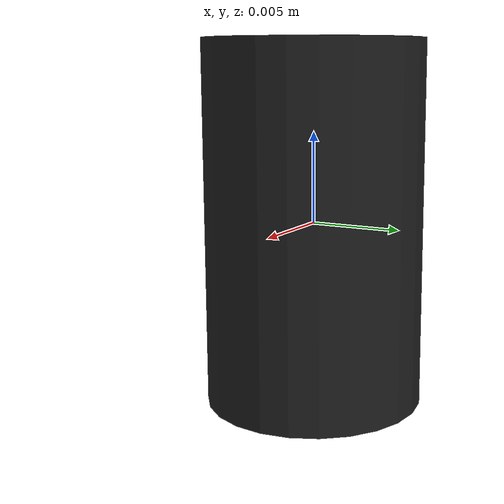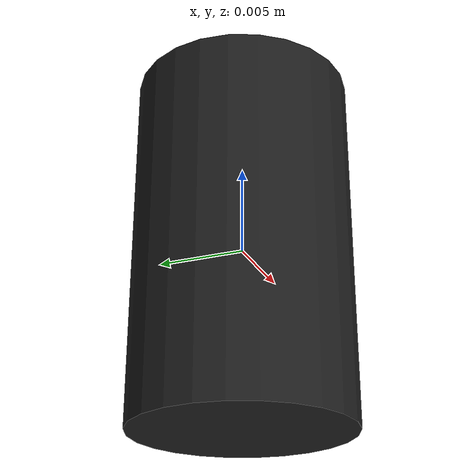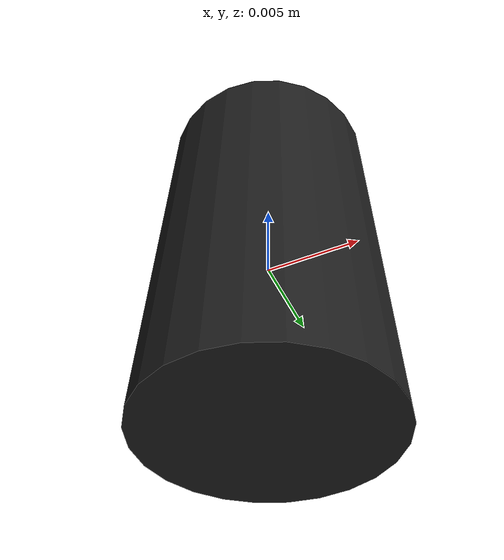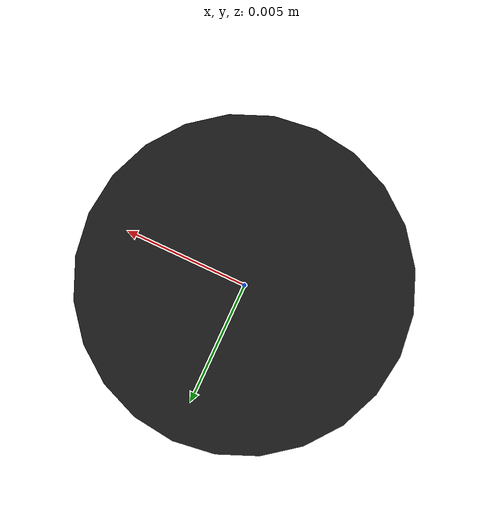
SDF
<?xml version="1.0" ?>
<sdf version="1.4">
  <model name="rangefinder">
    <link name="link">
      <pose>0 0 0 0 0 0</pose>
      <inertial>
        <pose>0 0 0 0 0 0</pose>
        <mass>0.01</mass>
        <inertia>
          <ixx>2.1733e-6</ixx>
          <ixy>0</ixy>
          <ixz>0</ixz>
          <iyy>2.1733e-6</iyy>
          <iyz>0</iyz>
          <izz>1.8e-7</izz>
        </inertia>
      </inertial>
      <collision name='collision'>
        <geometry>
          <cylinder>
            <radius>0.006</radius>
            <length>0.02</length>
          </cylinder>
        </geometry>

      </collision>
      <visual name="visual">
        <geometry>
          <cylinder>
            <radius>0.006</radius>
            <length>0.02</length>
          </cylinder>
        </geometry>
        <material>
          <script>
            <name>Gazebo/Black</name>
          </script>
        </material>
      </visual>
      <sensor name="ultra" type="ray">
        <pose>0 0 -0.03 0 1.57079633 0</pose>
        <always_on>true</always_on>
        <visualize>true</visualize>
        <update_rate>10</update_rate>
        <ray>
          <scan>
            <horizontal>
              <samples>5</samples>
              <resolution>1.000000</resolution>
              <min_angle>-0.12</min_angle>
              <max_angle>0.12</max_angle>
            </horizontal>
            <vertical>
              <samples>5</samples>
              <resolution>1.000000</resolution>
              <min_angle>-0.01</min_angle>
              <max_angle>0.01</max_angle>
            </vertical>
          </scan>
          <range>
            <min>0</min>
            <max>5</max>
            <resolution>0.1</resolution>
          </range>
        </ray>
        <plugin name="ultrasonic_sensor" filename="libgazebo_ros_ray_sensor.so">
        <output_type>sensor_msgs/LaserScan</output_type>
          <frame_name>link</frame_name>
        </plugin>
      </sensor>
    </link>
  </model>
</sdf>
